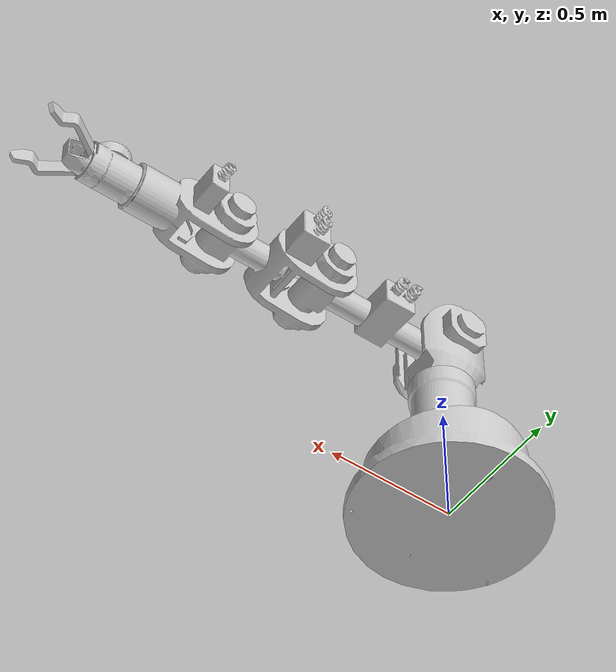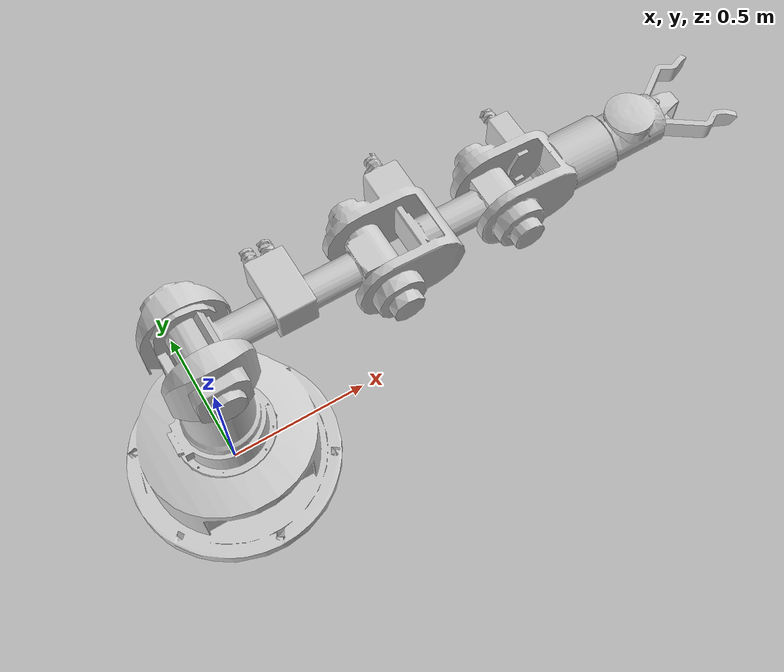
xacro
<?xml version="1.0"?>

<robot xmlns:xacro="http://ros.org/wiki/xacro"
  name="katana_300_6m180_with_controlbox">

  <xacro:include filename="$(find katana_description)/urdf/controlbox.urdf.xacro"/>

<xacro:include filename="$(find katana_description)/urdf/transmissions.urdf.xacro"/>

 <gazebo>
    <plugin name="gazebo_ros_control" filename="libgazebo_ros_control.so">
	<robotNamespace>$(arg prefix)</robotNamespace>
      <robotSimType>gazebo_ros_control/DefaultRobotHWSim</robotSimType>
    </plugin>

    <!-- gripper controller -->
    <plugin name="katana_gripper_controller" filename="libgazebo_ros_katana_gripper.so">
      <alwaysOn>true</alwaysOn>
      <node_namespace>$(arg prefix)/katana</node_namespace>
      <r_finger_joint>katana_r_finger_joint</r_finger_joint>
      <l_finger_joint>katana_l_finger_joint</l_finger_joint>
      <updateRate>1000.0</updateRate>
      <max_torque>0.5</max_torque>
    </plugin>

    <!-- a formal implementation of grasp hack in gazebo with fixed joint -->
    <gripper name="katana_gripper_grasp_hack">
      <grasp_check>
        <attach_steps>20</attach_steps>
        <detach_steps>40</detach_steps>
        <min_contact_count>2</min_contact_count>
      </grasp_check>
      <gripper_link>katana_r_finger_link</gripper_link>
      <gripper_link>katana_l_finger_link</gripper_link>
      <palm_link>katana_gripper_link</palm_link>
    </gripper>
  </gazebo>

  <!-- NOTE: all gazebo extensions are listed here: simulator_gazebo/gazebo/src/urdf2gazebo.cpp -->
  <!-- all materials are listed here: simulator_gazebo/gazebo/gazebo/share/gazebo/Media/materials/ -->

  <!-- *************** links *************** -->
  <gazebo reference="katana_base_link">
    <material value="Gazebo/Grey" />
  </gazebo>

  <gazebo reference="katana_motor1_pan_link">
    <material value="Gazebo/Grey" />
    <turnGravityOff>true</turnGravityOff>
  </gazebo>

  <gazebo reference="katana_motor2_lift_link">
    <material value="Gazebo/Grey" />
    <turnGravityOff>true</turnGravityOff>
  </gazebo>

  <gazebo reference="katana_motor3_lift_link">
    <material value="Gazebo/Grey" />
    <turnGravityOff>true</turnGravityOff>
  </gazebo>

  <gazebo reference="katana_motor4_lift_link">
    <material value="Gazebo/Grey" />
    <turnGravityOff>true</turnGravityOff>
  </gazebo>

  <gazebo reference="katana_motor5_wrist_roll_link">
    <material value="Gazebo/Grey" />
    <turnGravityOff>true</turnGravityOff>
  </gazebo>

  <gazebo reference="katana_gripper_link">
    <material value="Gazebo/Grey" />
    <turnGravityOff>true</turnGravityOff>
  </gazebo>

  <xacro:macro name="gazebo_finger_link" params="prefix">
    <!-- TODO: set friction parameters (mu1, mu2, kp, kd) for fingers (see PR2 gripper.gazebo.xacro) -->
    <gazebo reference="katana_${prefix}_finger_link">
      <material value="Gazebo/Grey" />
      <turnGravityOff>true</turnGravityOff>
    </gazebo>
  </xacro:macro>

  <xacro:gazebo_finger_link  prefix="r"/>
  <xacro:gazebo_finger_link  prefix="l"/>

  <property name="M_PI" value="3.1415926535897931" />

  <!-- all values from the katana manual -->
  <property name="base_height" value="0.6045" />
  <property name="link2_length" value="0.57" />
  <property name="link3_length" value="0.417" />
  <property name="link4_length" value="0.4569" />
  <property name="link5_length" value="0.4515" />

  <!-- All inertial values (mass, center of mass and inertia tensor) have been
       calculated from the meshes using MeshLab -->
  <!-- the effort limits have been measured experimentally from the maximum effort the Gazebo controller
       uses in normal conditions -->

  <link name="katana_base_link">
    <visual>
      <origin xyz="0 0 0" rpy="0 0 0" />
      <geometry>
        <mesh filename="package://katana_description/meshes/katana/katana_base_link.stl" scale = "3 3 3"/>
      </geometry>

      <material name="grey">
        <color rgba="0.8 0.8 0.8 1"/>
      </material>
    </visual>
    <collision>
      <origin xyz="0 0 0" rpy="0 0 0" />
      <geometry>
        <mesh filename="package://katana_description/meshes/katana/convex/katana_base_link_convex.stl" scale = "3 3 3"/>
      </geometry>
    </collision>
    <inertial>
      <mass value="1.4047990875" />
      <origin xyz="-0.000327 0.000908 0.058457"/>
      <inertia ixx="0.003000703" ixy="0.000000864" ixz="-0.000011312"
        iyy="0.002974822" iyz="0.000036294"
        izz="0.001434739" />
    </inertial>
  </link>

  <joint name="katana_motor1_pan_joint" type="revolute">
    <!-- Joint 1 in Katana Manual -->
    <parent link="katana_base_link"/>
    <child link="katana_motor1_pan_link" />
    <origin xyz="0 0 ${base_height}" rpy="0 0 0"/>
    <axis xyz="0 0 1"/>
    <limit effort="1.5" lower="-3.025528" upper="2.891097" velocity="2.208932"/>
  </joint>

  <link name="katana_motor1_pan_link">
    <visual>
      <origin xyz="0 0 ${-base_height}" rpy="0 0 0" />
      <geometry>
        <mesh filename="package://katana_description/meshes/katana/katana_motor1_pan_link.stl" scale = "3 3 3"/>
      </geometry>

      <material name="grey" />
    </visual>
    <collision>
      <origin xyz="0 0 ${-base_height}" rpy="0 0 0" />
      <geometry>
        <mesh filename="package://katana_description/meshes/katana/convex/katana_motor1_pan_link_convex.stl" scale = "3 3 3"/>

</geometry>
    </collision>
    <inertial>
      <mass value="0.74793301875" />
      <origin xyz="-0.000410 -0.001285 -0.016774" />
      <inertia ixx="0.001737241" ixy="0.000000421" ixz="0.000000650"
        iyy="0.000998782" iyz="0.000016114"
        izz="0.001349170" />
    </inertial>
  </link>

  <joint name="katana_motor2_lift_joint" type="revolute">
    <!-- Joint 2 in Katana Manual -->
    <parent link="katana_motor1_pan_link" />
    <child link="katana_motor2_lift_link" />
    <origin xyz="0 0 0" rpy="${M_PI/2} 0 0"/>
    <axis xyz="0 0 1"/>
    <limit effort="0.6" lower="-0.135228" upper="2.168572"  velocity="1.190799"/>
  </joint>

  <link name="katana_motor2_lift_link">
    <visual>
      <origin rpy="${-M_PI/2} 0 0" xyz="0 0 0"/>
      <geometry>
        <mesh filename="package://katana_description/meshes/katana/katana_motor2_lift_link.stl" scale = "3 3 3"/>
      </geometry>

        <material name="grey" />
      </visual>
      <collision>
        <origin rpy="${-M_PI/2} 0 0" xyz="0 0 0"/>
        <geometry>
          <mesh filename="package://katana_description/meshes/katana/convex/katana_motor2_lift_link_convex.stl" scale = "3 3 3"/>
        </geometry>
      </collision>
      <inertial>
        <mass value="0.80174941875" />
        <origin xyz="0.092420 0.005283 0.000172"/>
        <inertia ixx="0.000478252" ixy="0.000081166" ixz="0.000003961"
          iyy="0.004314636" iyz="0.000000332"
          izz="0.004625444" />
      </inertial>
    </link>

    <joint name="katana_motor3_lift_joint" type="revolute">
      <!-- Joint 3 in Katana Manual -->
      <parent link="katana_motor2_lift_link" />
      <child  link="katana_motor3_lift_link" />
      <origin xyz="${link2_length} 0 0" rpy="0 0 0"/>
      <axis xyz="0 0 1"/>
      <!-- unexplicably, the measured velocity limit of this motor is exactly half of what vel_enc2rad(180) says -->
      <limit effort="0.25" lower="-2.221804" upper="2.054223"  velocity="1.190799"/>
    </joint>

    <link name="katana_motor3_lift_link">
      <visual>
        <origin rpy="${-M_PI/2} 0 0" xyz="0 0 0"/>
        <geometry>
          <mesh filename="package://katana_description/meshes/katana/katana_motor3_lift_link.stl" scale = "3 3 3"/>
        </geometry>

        <material name="grey" />
      </visual>
      <collision>
        <origin rpy="${-M_PI/2} 0 0" xyz="0 0 0"/>
        <geometry>
          <mesh filename="package://katana_description/meshes/katana/convex/katana_motor3_lift_link_convex.stl" scale = "3 3 3"/>
        </geometry>
      </collision>
      <inertial>
        <mass value="0.79241664375" />
        <origin xyz="0.058036 0.008963 -0.000187"/>
        <inertia ixx="0.001156089" ixy="0.000112877" ixz="-0.000004398"
          iyy="0.002305646" iyz="-0.000000036"
          izz="0.003128648" />
      </inertial>
    </link>

    <joint name="katana_motor4_lift_joint" type="revolute">
      <!-- Joint 4 in Katana Manual -->
      <parent link="katana_motor3_lift_link" />
      <child  link="katana_motor4_lift_link" />
      <origin rpy="${M_PI} 0 0" xyz="${link3_length} 0 0"/>
      <axis xyz="0 0 1"/>
      <limit effort="0.1" lower="-2.033309" upper="1.876133"  velocity="2.208932"/>
    </joint>

    <link name="katana_motor4_lift_link">
      <visual>
        <origin rpy="${M_PI/2} 0 0" xyz="0 0 0"/>
        <geometry>
          <mesh filename="package://katana_description/meshes/katana/katana_motor4_lift_link.stl" scale = "3 3 3"/>
        </geometry>

        <material name="grey" />
      </visual>
      <collision>
        <origin rpy="${M_PI/2} 0 0" xyz="0 0 0"/>
        <geometry>
          <mesh filename="package://katana_description/meshes/katana/convex/katana_motor4_lift_link_convex.stl" scale = "3 3 3"/>
        </geometry>
      </collision>
      <inertial>
        <mass value="0.69149323125" />
        <origin xyz="0.050401 0.005807 0.000000"/>
        <inertia ixx="0.000765999" ixy="0.000045260" ixz="-0.000001210"
          iyy="0.001504115" iyz="0.000000147"
          izz="0.001887277" />
      </inertial>
    </link>

    <joint name="katana_motor5_wrist_roll_joint" type="revolute">
      <!-- Joint 5 in Katana Manual -->
      <parent link="katana_motor4_lift_link" />
      <child  link="katana_motor5_wrist_roll_link" />
      <origin rpy="${M_PI/2} 0 ${-M_PI/2}" xyz="${link4_length} 0 0"/>
      <axis xyz="0 0 1"/>
      <limit effort="0.01" lower="-2.993240" upper="2.870985"  velocity="2.208932"/>
    </joint>

    <link name="katana_motor5_wrist_roll_link">
      <visual>
        <origin rpy="0 ${M_PI} 0" xyz="0 0 0"/>
        <geometry>
          <mesh filename="package://katana_description/meshes/katana/katana_motor5_wrist_roll_link.stl" scale = "3 3 3"/>

        </geometry>

        <material name="grey" />
      </visual>
      <collision>
        <origin rpy="0 ${M_PI} 0" xyz="0 0 0"/>
        <geometry>
          <mesh filename="package://katana_description/meshes/katana/convex/katana_motor5_wrist_roll_link_convex.stl" scale = "3 3 3"/>

        </geometry>
      </collision>
      <inertial>
        <mass value="0.25622555625" />
        <origin xyz="-0.003140899 0.000013920 0.001680144"/>
        <inertia ixx="0.000120481" ixy="0.000000015" ixz="-0.000001089"
          iyy="0.000132130" iyz="-0.000000124"
          izz="0.000093522" />
      </inertial>
    </link>

    <joint name="katana_gripper_joint" type="fixed">
      <parent link="katana_motor5_wrist_roll_link" />
      <child link="katana_gripper_link" />
      <origin rpy="0 ${M_PI/2} 0" xyz="0 0 -0.0323"/>
    </joint>

    <link name="katana_gripper_link">
      <visual>
        <origin rpy="0 ${M_PI} 0" xyz="0 0 0"/>
        <geometry>
          <mesh filename="package://katana_description/meshes/katana/katana_gripper_link.stl" scale = "3 3 3"/>

        </geometry>

        <material name="grey" />
      </visual>
      <collision>
        <origin rpy="0 ${M_PI} 0" xyz="0 0 0"/>
        <geometry>
          <mesh filename="package://katana_description/meshes/katana/convex/katana_gripper_link_convex.stl" scale = "3 3 3"/>
        </geometry>
      </collision>
      <inertial>
        <mass value="0.0552136183596" />
        <origin xyz="-0.014379 -0.000000 0.000006"/>
        <inertia ixx="0.000011468" ixy="0.000000000" ixz="0.000000007"
          iyy="0.000013830" iyz="0.000000000"
          izz="0.000011290" /></inertial>
    </link>

    <xacro:macro name="finger" params="prefix rotate">
      <joint name="katana_${prefix}_finger_joint" type="revolute">
        <parent link="katana_gripper_link" />
        <child  link="katana_${prefix}_finger_link" />
        <origin rpy="${rotate} 0 0" xyz="0.034 0 0"/>
        <axis xyz="0 0 1"/>
        <limit effort="0.5" lower="-0.44" upper="0.30"  velocity="0.718834"/>
      </joint>

      <link name="katana_${prefix}_finger_link">
        <visual>
          <origin rpy="0 ${M_PI} 0" xyz="0 0 0"/>
          <geometry>
            <mesh filename="package://katana_description/meshes/katana/katana_gripper_${prefix}_finger.stl" scale = "3 3 3"/>
          </geometry>

          <material name="grey" />
        </visual>
        <collision>
          <origin rpy="0 ${M_PI} 0" xyz="0 0 0"/>
          <geometry>
            <mesh filename="package://katana_description/meshes/katana/convex/katana_gripper_${prefix}_finger_convex.stl" scale = "3 3 3"/>

          </geometry>
        </collision>
        <inertial>
          <mass value="0.0251722230462" />
          <origin xyz="${0.034 + (-0.032216)} 0.025167 -.001603"/>
          <inertia ixx="0.000005990" ixy="0.000008473" ixz="0.000001448"
            iyy="0.000019757" iyz="-0.000000996"
            izz="0.000023588" />
        </inertial>
      </link>
    </xacro:macro>

    <xacro:finger prefix="r" rotate="0" />
    <xacro:finger prefix="l" rotate="${M_PI}" />

    <joint name="katana_gripper_tool_frame_joint" type="fixed">
      <parent link="katana_motor5_wrist_roll_link"/>
      <child link="katana_gripper_tool_frame" />
      <origin xyz="0 0 -${link5_length}" rpy="0 ${M_PI/2} 0"/>
    </joint>

    <link name="katana_gripper_tool_frame">
      <!-- This is the coordinate system of the tool (this is the position
         used in IK etc., relative to the base frame); there is no actual
         arm part attached to this link -->
  </link>

  <joint name="katana_base_frame_joint" type="fixed">
    <parent link="katana_base_link"/>
    <child link="katana_base_frame" />
    <origin xyz="0 0 ${base_height}" rpy="0 0 0"/>
  </joint>

  <link name="katana_base_frame">
    <!-- This is the reference coordinate system of the arm (the KNI kinematics are specified
         in this frame); there is no actual arm part attached to this link -->
  </link>
</robot>

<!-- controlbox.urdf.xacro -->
<robot xmlns:xacro="http://ros.org/wiki/xacro" >

  <property name="M_PI" value="3.1415926535897931" />
  <property name="controlbox_height" value="0.219" />

  <link name="katana_internal_controlbox_link">
    <visual>
      <origin xyz="0 0 0" rpy="0 0 ${M_PI}" />
	<geometry>
        <mesh filename="package://katana_description/meshes/katana/katana_internal_controlbox.stl" scale= "3 3 3"/>
      </geometry>
      <material name="grey">
        <color rgba="0.8 0.8 0.8 1"/>
      </material>
    </visual>
    <collision>
      <origin xyz="0 0 0" rpy="0 0 ${M_PI}" />
      <geometry>
        <mesh filename="package://katana_description/meshes/katana/convex/katana_internal_controlbox_convex.stl" scale= "3 3 3" />
      </geometry>
    </collision>
    <inertial>
      <mass value="4.47057045" />
      <origin xyz="0.000024 -0.006508 0.030555" />
      <inertia ixx="0.013760086" ixy="-0.000000539" ixz="-0.000000442"
        iyy="0.015251808" iyz="0.000361753"
        izz="0.023409309" />
    </inertial>
  </link>

  <joint name="katana_base_joint" type="fixed">
    <parent link="katana_internal_controlbox_link"/>
    <child link="katana_base_link"/>
    <origin xyz="0 0 ${controlbox_height}"/>
  </joint>

  <gazebo reference="katana_internal_controlbox_link">
    <material value="Gazebo/Grey" />
  </gazebo>

</robot>
